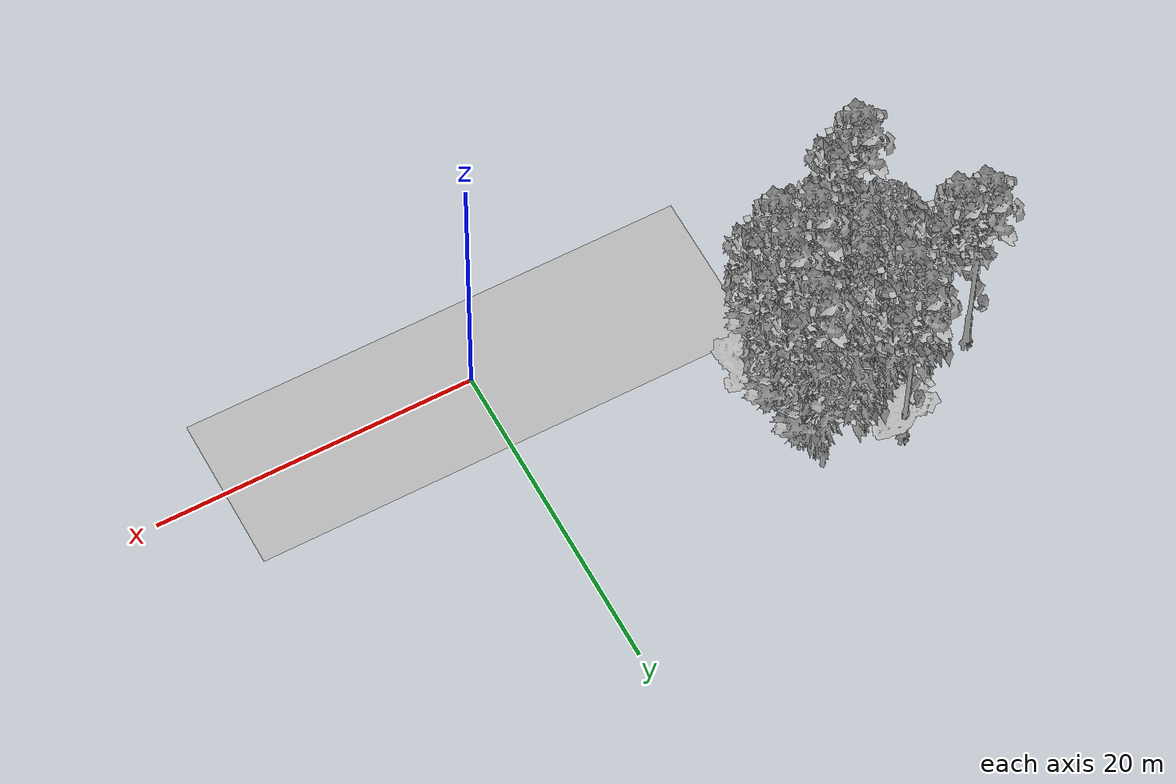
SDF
<sdf version="1.7">
 <world name="default">
  <model name="ground_plane">
   <static>1</static>
   <link name="link">
    <collision name="collision">
     <pose>-50 0 0 0 -0 0</pose>
     <geometry><plane><normal>0 0 1</normal><size>100 100</size></plane></geometry>
     <surface><contact><ode><min_depth>0.01</min_depth><max_vel>0</max_vel></ode></contact></surface>
    </collision>
    <visual name="grass">
     <cast_shadows>0</cast_shadows>
     <geometry>
      <mesh>
       <scale>0.5814285714285714 0.18142857142857144 0.1</scale>
       <uri>file://grass_plane/meshes/grass_plane.dae</uri>
      </mesh>
     </geometry>
    </visual>
   </link>
  </model>
  <model name="Tree 11">
   <static>1</static>
   <pose>-25.217248290302596 5.485725349668002 0 1.57079 -0 0</pose>
   <link name="link">
    <collision name="collision">
     <geometry><mesh><scale>3 2 3</scale><uri>model://tree_3/meshes/tree_3.obj</uri></mesh></geometry>
    </collision>
    <visual name="visual">
     <geometry><mesh><scale>3 2 3</scale><uri>model://tree_3/meshes/tree_3.obj</uri></mesh></geometry>
    </visual>
   </link>
  </model>
  <model name="Tree 54">
   <static>1</static>
   <pose>-16.33232083068372 11.598649798440832 0 1.57079 -0 0</pose>
   <link name="link">
    <collision name="collision">
     <geometry><mesh><scale>3 2 3</scale><uri>model://tree_3/meshes/tree_3.obj</uri></mesh></geometry>
    </collision>
    <visual name="visual">
     <geometry><mesh><scale>3 2 3</scale><uri>model://tree_3/meshes/tree_3.obj</uri></mesh></geometry>
    </visual>
   </link>
  </model>
  <model name="Tree 76">
   <static>1</static>
   <pose>-24.707839058786874 10.705047641890278 0 1.57079 -0 0</pose>
   <link name="link">
    <collision name="collision">
     <geometry><mesh><scale>3.5 5 3.5</scale><uri>model://tree_9/meshes/tree_9.obj</uri></mesh></geometry>
    </collision>
    <visual name="visual">
     <geometry><mesh><scale>3.5 5 3.5</scale><uri>model://tree_9/meshes/tree_9.obj</uri></mesh></geometry>
    </visual>
   </link>
  </model>
  <model name="Tree 107">
   <static>1</static>
   <pose>-22.144944114720175 3.931255566504852 0 1.57079 -0 0</pose>
   <link name="link">
    <collision name="collision">
     <geometry><mesh><scale>3.5 5 3.5</scale><uri>model://tree_9/meshes/tree_9.obj</uri></mesh></geometry>
    </collision>
    <visual name="visual">
     <geometry><mesh><scale>3.5 5 3.5</scale><uri>model://tree_9/meshes/tree_9.obj</uri></mesh></geometry>
    </visual>
   </link>
  </model>
  <model name="Tree 108">
   <static>1</static>
   <pose>-26.24240353157756 11.079918417459215 0 1.57079 -0 0</pose>
   <link name="link">
    <collision name="collision">
     <geometry><mesh><scale>3.5 5 3.5</scale><uri>model://tree_9/meshes/tree_9.obj</uri></mesh></geometry>
    </collision>
    <visual name="visual">
     <geometry><mesh><scale>3.5 5 3.5</scale><uri>model://tree_9/meshes/tree_9.obj</uri></mesh></geometry>
    </visual>
   </link>
  </model>
  <model name="Tree 119">
   <static>1</static>
   <pose>-20.02975533720393 12.756669880019825 0 1.57079 -0 0</pose>
   <link name="link">
    <collision name="collision">
     <geometry><mesh><scale>3.5 5 3.5</scale><uri>model://tree_2/meshes/tree_2.obj</uri></mesh></geometry>
    </collision>
    <visual name="visual">
     <geometry><mesh><scale>3.5 5 3.5</scale><uri>model://tree_2/meshes/tree_2.obj</uri></mesh></geometry>
    </visual>
   </link>
  </model>
  <model name="Tree 173">
   <static>1</static>
   <pose>-14.711808715419103 12.33817255289658 0 1.57079 -0 0</pose>
   <link name="link">
    <collision name="collision">
     <geometry><mesh><scale>3.5 5 3.5</scale><uri>model://tree_9/meshes/tree_9.obj</uri></mesh></geometry>
    </collision>
    <visual name="visual">
     <geometry><mesh><scale>3.5 5 3.5</scale><uri>model://tree_9/meshes/tree_9.obj</uri></mesh></geometry>
    </visual>
   </link>
  </model>
  <model name="Tree 228">
   <static>1</static>
   <pose>-16.69994871706089 11.027862552153596 0 1.57079 -0 0</pose>
   <link name="link">
    <collision name="collision">
     <geometry><mesh><scale>3.5 5 3.5</scale><uri>model://tree_2/meshes/tree_2.obj</uri></mesh></geometry>
    </collision>
    <visual name="visual">
     <geometry><mesh><scale>3.5 5 3.5</scale><uri>model://tree_2/meshes/tree_2.obj</uri></mesh></geometry>
    </visual>
   </link>
  </model>
  <model name="Tree 229">
   <static>1</static>
   <pose>-19.635476105073877 10.781305085751473 0 1.57079 -0 0</pose>
   <link name="link">
    <collision name="collision">
     <geometry><mesh><scale>3.5 5 3.5</scale><uri>model://tree_2/meshes/tree_2.obj</uri></mesh></geometry>
    </collision>
    <visual name="visual">
     <geometry><mesh><scale>3.5 5 3.5</scale><uri>model://tree_2/meshes/tree_2.obj</uri></mesh></geometry>
    </visual>
   </link>
  </model>
  <model name="Tree 265">
   <static>1</static>
   <pose>-14.68405136737234 11.673035462473408 0 1.57079 -0 0</pose>
   <link name="link">
    <collision name="collision">
     <geometry><mesh><scale>3.5 5 3.5</scale><uri>model://tree_2/meshes/tree_2.obj</uri></mesh></geometry>
    </collision>
    <visual name="visual">
     <geometry><mesh><scale>3.5 5 3.5</scale><uri>model://tree_2/meshes/tree_2.obj</uri></mesh></geometry>
    </visual>
   </link>
  </model>
  <model name="Tree 276">
   <static>1</static>
   <pose>-17.275370986595313 7.4349398569451175 0 1.57079 -0 0</pose>
   <link name="link">
    <collision name="collision">
     <geometry><mesh><scale>3.5 5 3.5</scale><uri>model://tree_9/meshes/tree_9.obj</uri></mesh></geometry>
    </collision>
    <visual name="visual">
     <geometry><mesh><scale>3.5 5 3.5</scale><uri>model://tree_9/meshes/tree_9.obj</uri></mesh></geometry>
    </visual>
   </link>
  </model>
  <model name="Tree 307">
   <static>1</static>
   <pose>-14.49144033455304 6.602807111464333 0 1.57079 -0 0</pose>
   <link name="link">
    <collision name="collision">
     <geometry><mesh><scale>3 2 3</scale><uri>model://tree_3/meshes/tree_3.obj</uri></mesh></geometry>
    </collision>
    <visual name="visual">
     <geometry><mesh><scale>3 2 3</scale><uri>model://tree_3/meshes/tree_3.obj</uri></mesh></geometry>
    </visual>
   </link>
  </model>
  <model name="Tree 355">
   <static>1</static>
   <pose>-20.148564282781344 13.10469190471467 0 1.57079 -0 0</pose>
   <link name="link">
    <collision name="collision">
     <geometry><mesh><scale>3.5 5 3.5</scale><uri>model://tree_9/meshes/tree_9.obj</uri></mesh></geometry>
    </collision>
    <visual name="visual">
     <geometry><mesh><scale>3.5 5 3.5</scale><uri>model://tree_9/meshes/tree_9.obj</uri></mesh></geometry>
    </visual>
   </link>
  </model>
  <model name="Tree 408">
   <static>1</static>
   <pose>-18.88046827339658 5.1769573710105234 0 1.57079 -0 0</pose>
   <link name="link">
    <collision name="collision">
     <geometry><mesh><scale>3.5 5 3.5</scale><uri>model://tree_2/meshes/tree_2.obj</uri></mesh></geometry>
    </collision>
    <visual name="visual">
     <geometry><mesh><scale>3.5 5 3.5</scale><uri>model://tree_2/meshes/tree_2.obj</uri></mesh></geometry>
    </visual>
   </link>
  </model>
  <model name="Tree 428">
   <static>1</static>
   <pose>-20.80678244089859 8.925106492565856 0 1.57079 -0 0</pose>
   <link name="link">
    <collision name="collision">
     <geometry><mesh><scale>3.5 5 3.5</scale><uri>model://tree_2/meshes/tree_2.obj</uri></mesh></geometry>
    </collision>
    <visual name="visual">
     <geometry><mesh><scale>3.5 5 3.5</scale><uri>model://tree_2/meshes/tree_2.obj</uri></mesh></geometry>
    </visual>
   </link>
  </model>
  <model name="Tree 436">
   <static>1</static>
   <pose>-14.776370272348565 8.894368431138432 0 1.57079 -0 0</pose>
   <link name="link">
    <collision name="collision">
     <geometry><mesh><scale>3.5 5 3.5</scale><uri>model://tree_9/meshes/tree_9.obj</uri></mesh></geometry>
    </collision>
    <visual name="visual">
     <geometry><mesh><scale>3.5 5 3.5</scale><uri>model://tree_9/meshes/tree_9.obj</uri></mesh></geometry>
    </visual>
   </link>
  </model>
  <model name="Tree 438">
   <static>1</static>
   <pose>-19.92617826409728 14.765258741616591 0 1.57079 -0 0</pose>
   <link name="link">
    <collision name="collision">
     <geometry><mesh><scale>3.5 5 3.5</scale><uri>model://tree_9/meshes/tree_9.obj</uri></mesh></geometry>
    </collision>
    <visual name="visual">
     <geometry><mesh><scale>3.5 5 3.5</scale><uri>model://tree_9/meshes/tree_9.obj</uri></mesh></geometry>
    </visual>
   </link>
  </model>
  <model name="Tree 445">
   <static>1</static>
   <pose>-16.004787253073687 7.209548715154078 0 1.57079 -0 0</pose>
   <link name="link">
    <collision name="collision">
     <geometry><mesh><scale>3.5 5 3.5</scale><uri>model://tree_2/meshes/tree_2.obj</uri></mesh></geometry>
    </collision>
    <visual name="visual">
     <geometry><mesh><scale>3.5 5 3.5</scale><uri>model://tree_2/meshes/tree_2.obj</uri></mesh></geometry>
    </visual>
   </link>
  </model>
  <model name="Tree 481">
   <static>1</static>
   <pose>-20.366027131803584 13.282034273171064 0 1.57079 -0 0</pose>
   <link name="link">
    <collision name="collision">
     <geometry><mesh><scale>3 2 3</scale><uri>model://tree_3/meshes/tree_3.obj</uri></mesh></geometry>
    </collision>
    <visual name="visual">
     <geometry><mesh><scale>3 2 3</scale><uri>model://tree_3/meshes/tree_3.obj</uri></mesh></geometry>
    </visual>
   </link>
  </model>
  <model name="Tree 513">
   <static>1</static>
   <pose>-19.935769233591586 10.853821720138157 0 1.57079 -0 0</pose>
   <link name="link">
    <collision name="collision">
     <geometry><mesh><scale>3.5 5 3.5</scale><uri>model://tree_2/meshes/tree_2.obj</uri></mesh></geometry>
    </collision>
    <visual name="visual">
     <geometry><mesh><scale>3.5 5 3.5</scale><uri>model://tree_2/meshes/tree_2.obj</uri></mesh></geometry>
    </visual>
   </link>
  </model>
  <model name="Tree 516">
   <static>1</static>
   <pose>-15.026537116742674 14.269116490110292 0 1.57079 -0 0</pose>
   <link name="link">
    <collision name="collision">
     <geometry><mesh><scale>3.5 5 3.5</scale><uri>model://tree_2/meshes/tree_2.obj</uri></mesh></geometry>
    </collision>
    <visual name="visual">
     <geometry><mesh><scale>3.5 5 3.5</scale><uri>model://tree_2/meshes/tree_2.obj</uri></mesh></geometry>
    </visual>
   </link>
  </model>
  <model name="Tree 521">
   <static>1</static>
   <pose>-21.97705320560267 7.086124643258572 0 1.57079 -0 0</pose>
   <link name="link">
    <collision name="collision">
     <geometry><mesh><scale>3.5 5 3.5</scale><uri>model://tree_2/meshes/tree_2.obj</uri></mesh></geometry>
    </collision>
    <visual name="visual">
     <geometry><mesh><scale>3.5 5 3.5</scale><uri>model://tree_2/meshes/tree_2.obj</uri></mesh></geometry>
    </visual>
   </link>
  </model>
  <model name="Tree 526">
   <static>1</static>
   <pose>-15.355100158756386 6.782311755382963 0 1.57079 -0 0</pose>
   <link name="link">
    <collision name="collision">
     <geometry><mesh><scale>3.5 5 3.5</scale><uri>model://tree_9/meshes/tree_9.obj</uri></mesh></geometry>
    </collision>
    <visual name="visual">
     <geometry><mesh><scale>3.5 5 3.5</scale><uri>model://tree_9/meshes/tree_9.obj</uri></mesh></geometry>
    </visual>
   </link>
  </model>
 </world>
</sdf>
